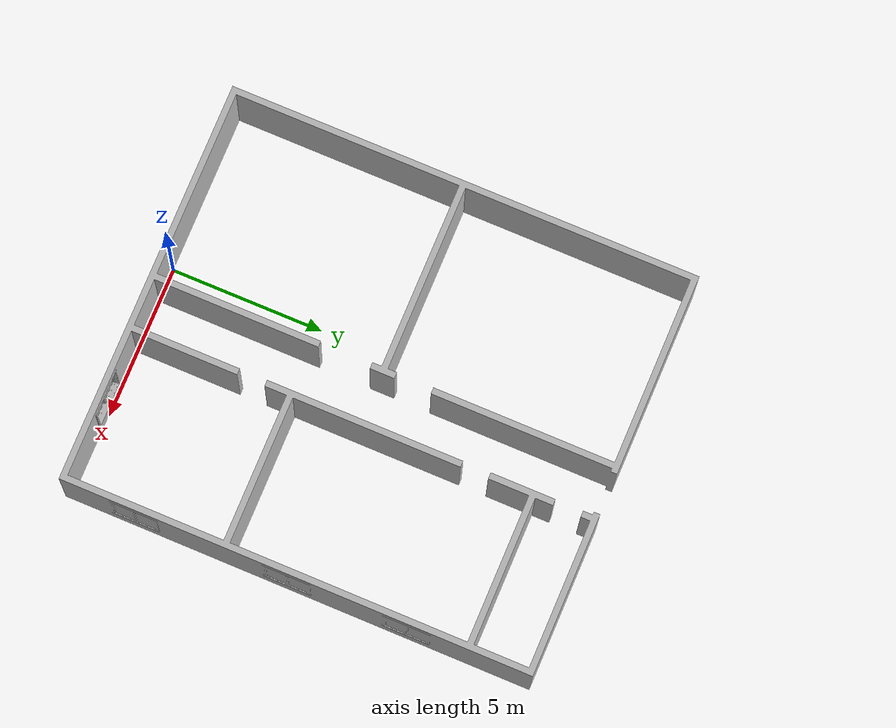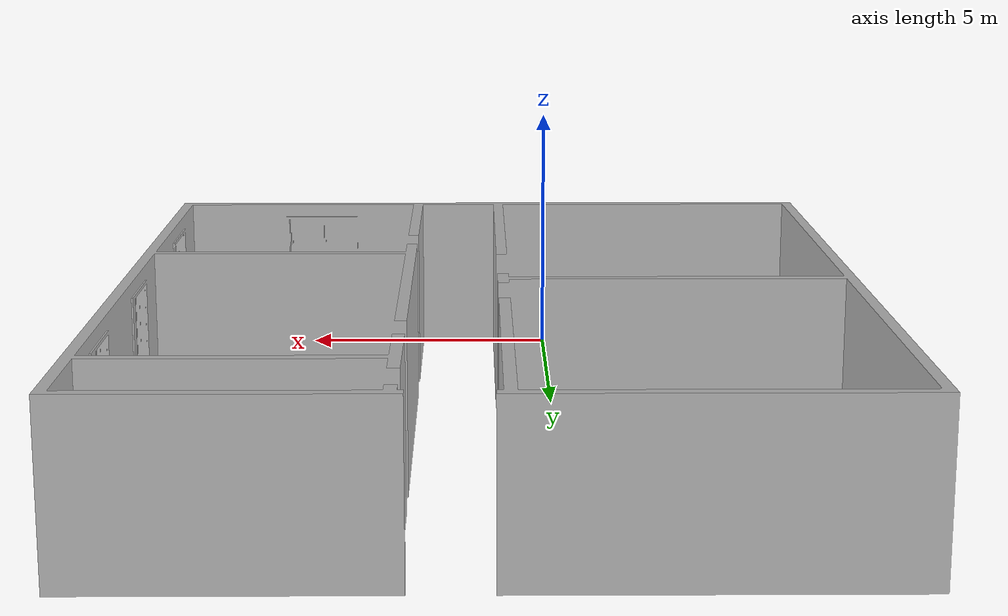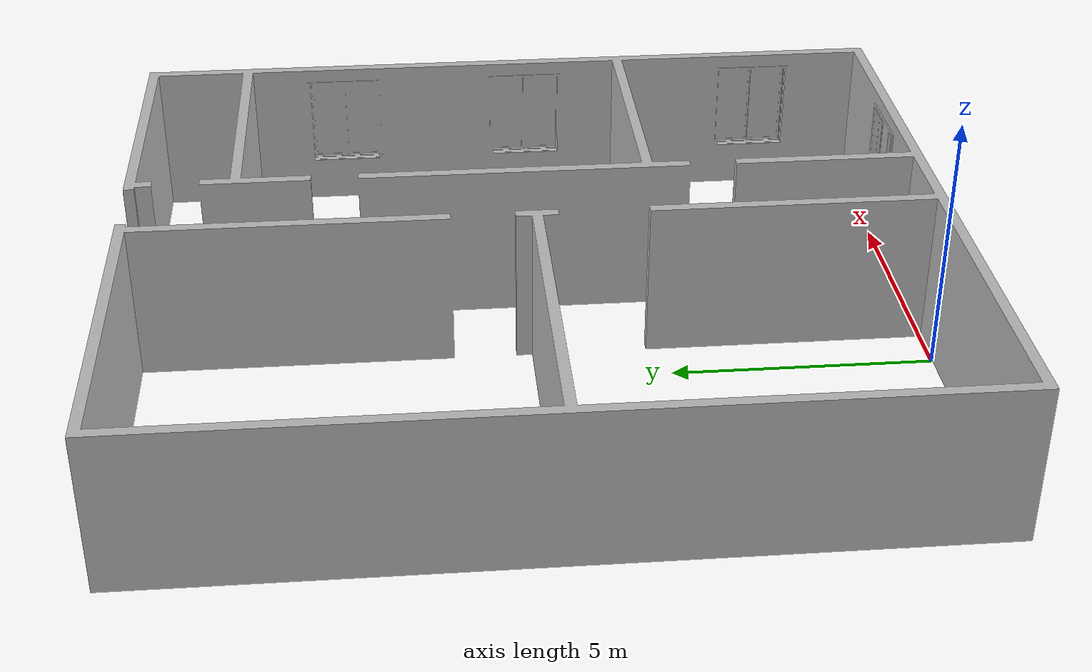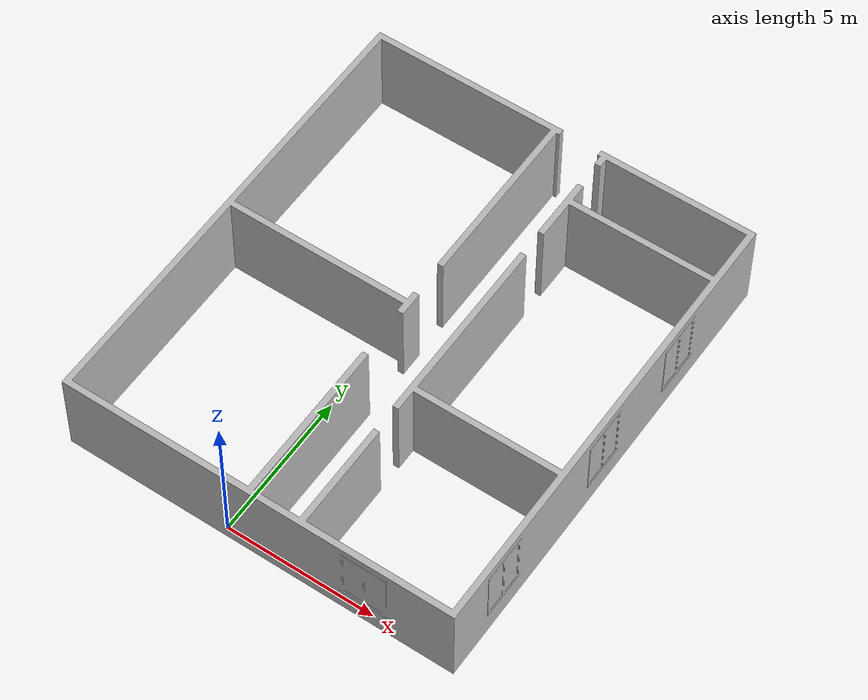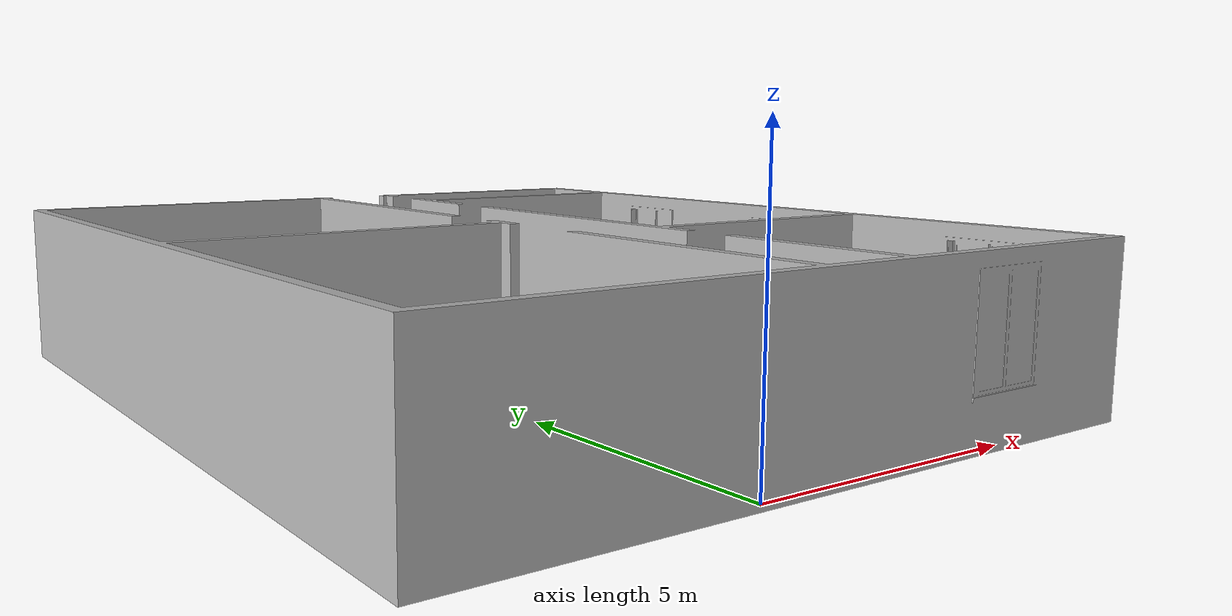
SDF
<?xml version="1.0" ?>
<sdf version="1.6">
  <model name="building1">
    <static>true</static>
    <link name="link">
      <collision name="collision">
        <geometry>
          <mesh>
            <uri>model://building1/meshes/building1.dae</uri>
          </mesh>
        </geometry>
      </collision>
      <visual name="visual">
        <geometry>
          <mesh>
            <uri>model://building1/meshes/building1.dae</uri>
          </mesh>
        </geometry>
      </visual>
    </link>
  </model>
</sdf>
